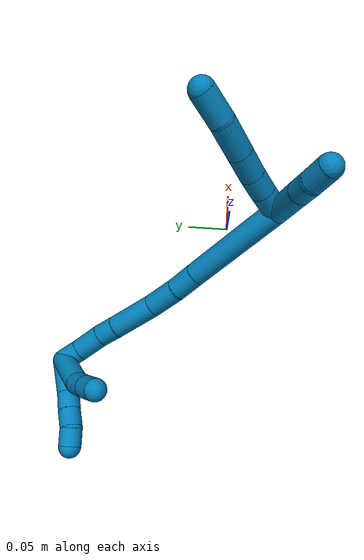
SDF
<sdf version="1.7">
 <world name="default">
  <model name="9">
   <static>0</static>
   <link name="9">
    <collision name="collision-cylinder-e_1_2_8">
     <pose>0.006198 0.00223 0.013406 -0.164849 0.427857 -0.035891</pose>
     <geometry><cylinder><radius>0.0125</radius><length>0.029873</length></cylinder></geometry>
     <surface>
      <friction><ode><mu>1.16</mu><mu2>1.16</mu2><slip1>0</slip1><slip2>0</slip2></ode></friction>
      <contact><ode><kp>1e+06</kp><kd>1</kd><max_vel>0</max_vel><min_depth>0.001</min_depth></ode></contact>
     </surface>
    </collision>
    <visual name="visual-cylinder-e_1_2_8">
     <pose>0.006198 0.00223 0.013406 -0.164849 0.427857 -0.035891</pose>
     <geometry><cylinder><radius>0.0125</radius><length>0.029873</length></cylinder></geometry>
     <material><ambient>0 0.490196 0.709804 1</ambient></material>
    </visual>
    <collision name="collision-cylinder-e_2_8_9">
     <pose>0.017258 0.00594 0.036866 -0.146128 0.446323 -0.033219</pose>
     <geometry><cylinder><radius>0.0125</radius><length>0.022533</length></cylinder></geometry>
     <surface>
      <friction><ode><mu>1.16</mu><mu2>1.16</mu2><slip1>0</slip1><slip2>0</slip2></ode></friction>
      <contact><ode><kp>1e+06</kp><kd>1</kd><max_vel>0</max_vel><min_depth>0.001</min_depth></ode></contact>
     </surface>
    </collision>
    <visual name="visual-cylinder-e_2_8_9">
     <pose>0.017258 0.00594 0.036866 -0.146128 0.446323 -0.033219</pose>
     <geometry><cylinder><radius>0.0125</radius><length>0.022533</length></cylinder></geometry>
     <material><ambient>0 0.490196 0.709804 1</ambient></material>
    </visual>
    <collision name="collision-cylinder-e_3_9_10">
     <pose>0.028019 0.008603 0.059261 -0.095579 0.444062 -0.021593</pose>
     <geometry><cylinder><radius>0.0125</radius><length>0.027457</length></cylinder></geometry>
     <surface>
      <friction><ode><mu>1.16</mu><mu2>1.16</mu2><slip1>0</slip1><slip2>0</slip2></ode></friction>
      <contact><ode><kp>1e+06</kp><kd>1</kd><max_vel>0</max_vel><min_depth>0.001</min_depth></ode></contact>
     </surface>
    </collision>
    <visual name="visual-cylinder-e_3_9_10">
     <pose>0.028019 0.008603 0.059261 -0.095579 0.444062 -0.021593</pose>
     <geometry><cylinder><radius>0.0125</radius><length>0.027457</length></cylinder></geometry>
     <material><ambient>0 0.490196 0.709804 1</ambient></material>
    </visual>
    <collision name="collision-cylinder-e_4_10_11">
     <pose>0.041978 0.011498 0.088134 -0.103203 0.451579 -0.023726</pose>
     <geometry><cylinder><radius>0.0125</radius><length>0.036946</length></cylinder></geometry>
     <surface>
      <friction><ode><mu>1.16</mu><mu2>1.16</mu2><slip1>0</slip1><slip2>0</slip2></ode></friction>
      <contact><ode><kp>1e+06</kp><kd>1</kd><max_vel>0</max_vel><min_depth>0.001</min_depth></ode></contact>
     </surface>
    </collision>
    <visual name="visual-cylinder-e_4_10_11">
     <pose>0.041978 0.011498 0.088134 -0.103203 0.451579 -0.023726</pose>
     <geometry><cylinder><radius>0.0125</radius><length>0.036946</length></cylinder></geometry>
     <material><ambient>0 0.490196 0.709804 1</ambient></material>
    </visual>
    <collision name="collision-cylinder-e_5_11_6">
     <pose>0.059617 0.016345 0.117853 -0.233343 0.615181 -0.074431</pose>
     <geometry><cylinder><radius>0.0125</radius><length>0.033192</length></cylinder></geometry>
     <surface>
      <friction><ode><mu>1.16</mu><mu2>1.16</mu2><slip1>0</slip1><slip2>0</slip2></ode></friction>
      <contact><ode><kp>1e+06</kp><kd>1</kd><max_vel>0</max_vel><min_depth>0.001</min_depth></ode></contact>
     </surface>
    </collision>
    <visual name="visual-cylinder-e_5_11_6">
     <pose>0.059617 0.016345 0.117853 -0.233343 0.615181 -0.074431</pose>
     <geometry><cylinder><radius>0.0125</radius><length>0.033192</length></cylinder></geometry>
     <material><ambient>0 0.490196 0.709804 1</ambient></material>
    </visual>
    <collision name="collision-cylinder-e_1_2_12">
     <pose>-0.003708 -0.015522 0.021424 0.626973 -0.139264 -0.045212</pose>
     <geometry><cylinder><radius>0.0125</radius><length>0.05343</length></cylinder></geometry>
     <surface>
      <friction><ode><mu>1.16</mu><mu2>1.16</mu2><slip1>0</slip1><slip2>0</slip2></ode></friction>
      <contact><ode><kp>1e+06</kp><kd>1</kd><max_vel>0</max_vel><min_depth>0.001</min_depth></ode></contact>
     </surface>
    </collision>
    <visual name="visual-cylinder-e_1_2_12">
     <pose>-0.003708 -0.015522 0.021424 0.626973 -0.139264 -0.045212</pose>
     <geometry><cylinder><radius>0.0125</radius><length>0.05343</length></cylinder></geometry>
     <material><ambient>0 0.490196 0.709804 1</ambient></material>
    </visual>
    <collision name="collision-cylinder-e_2_12_13">
     <pose>-0.008795 -0.037831 0.051388 0.67158 -0.12572 -0.043928</pose>
     <geometry><cylinder><radius>0.0125</radius><length>0.02199</length></cylinder></geometry>
     <surface>
      <friction><ode><mu>1.16</mu><mu2>1.16</mu2><slip1>0</slip1><slip2>0</slip2></ode></friction>
      <contact><ode><kp>1e+06</kp><kd>1</kd><max_vel>0</max_vel><min_depth>0.001</min_depth></ode></contact>
     </surface>
    </collision>
    <visual name="visual-cylinder-e_2_12_13">
     <pose>-0.008795 -0.037831 0.051388 0.67158 -0.12572 -0.043928</pose>
     <geometry><cylinder><radius>0.0125</radius><length>0.02199</length></cylinder></geometry>
     <material><ambient>0 0.490196 0.709804 1</ambient></material>
    </visual>
    <collision name="collision-cylinder-e_3_13_5">
     <pose>-0.009493 -0.054083 0.067737 0.880915 0.055479 0.026155</pose>
     <geometry><cylinder><radius>0.0125</radius><length>0.024581</length></cylinder></geometry>
     <surface>
      <friction><ode><mu>1.16</mu><mu2>1.16</mu2><slip1>0</slip1><slip2>0</slip2></ode></friction>
      <contact><ode><kp>1e+06</kp><kd>1</kd><max_vel>0</max_vel><min_depth>0.001</min_depth></ode></contact>
     </surface>
    </collision>
    <visual name="visual-cylinder-e_3_13_5">
     <pose>-0.009493 -0.054083 0.067737 0.880915 0.055479 0.026155</pose>
     <geometry><cylinder><radius>0.0125</radius><length>0.024581</length></cylinder></geometry>
     <material><ambient>0 0.490196 0.709804 1</ambient></material>
    </visual>
    <collision name="collision-cylinder-e_1_2_14">
     <pose>-0.014041 0.051284 -0.015125 -1.85759 -0.256807 0.342008</pose>
     <geometry><cylinder><radius>0.0125</radius><length>0.110562</length></cylinder></geometry>
     <surface>
      <friction><ode><mu>1.16</mu><mu2>1.16</mu2><slip1>0</slip1><slip2>0</slip2></ode></friction>
      <contact><ode><kp>1e+06</kp><kd>1</kd><max_vel>0</max_vel><min_depth>0.001</min_depth></ode></contact>
     </surface>
    </collision>
    <visual name="visual-cylinder-e_1_2_14">
     <pose>-0.014041 0.051284 -0.015125 -1.85759 -0.256807 0.342008</pose>
     <geometry><cylinder><radius>0.0125</radius><length>0.110562</length></cylinder></geometry>
     <material><ambient>0 0.490196 0.709804 1</ambient></material>
    </visual>
    <collision name="collision-cylinder-e_2_14_15">
     <pose>-0.032001 0.115456 -0.033706 -1.83283 -0.285699 0.370673</pose>
     <geometry><cylinder><radius>0.0125</radius><length>0.027813</length></cylinder></geometry>
     <surface>
      <friction><ode><mu>1.16</mu><mu2>1.16</mu2><slip1>0</slip1><slip2>0</slip2></ode></friction>
      <contact><ode><kp>1e+06</kp><kd>1</kd><max_vel>0</max_vel><min_depth>0.001</min_depth></ode></contact>
     </surface>
    </collision>
    <visual name="visual-cylinder-e_2_14_15">
     <pose>-0.032001 0.115456 -0.033706 -1.83283 -0.285699 0.370673</pose>
     <geometry><cylinder><radius>0.0125</radius><length>0.027813</length></cylinder></geometry>
     <material><ambient>0 0.490196 0.709804 1</ambient></material>
    </visual>
    <collision name="collision-cylinder-e_3_15_16">
     <pose>-0.03973 0.144871 -0.041132 -1.80647 -0.220465 0.278988</pose>
     <geometry><cylinder><radius>0.0125</radius><length>0.034838</length></cylinder></geometry>
     <surface>
      <friction><ode><mu>1.16</mu><mu2>1.16</mu2><slip1>0</slip1><slip2>0</slip2></ode></friction>
      <contact><ode><kp>1e+06</kp><kd>1</kd><max_vel>0</max_vel><min_depth>0.001</min_depth></ode></contact>
     </surface>
    </collision>
    <visual name="visual-cylinder-e_3_15_16">
     <pose>-0.03973 0.144871 -0.041132 -1.80647 -0.220465 0.278988</pose>
     <geometry><cylinder><radius>0.0125</radius><length>0.034838</length></cylinder></geometry>
     <material><ambient>0 0.490196 0.709804 1</ambient></material>
    </visual>
    <collision name="collision-cylinder-e_4_16_17">
     <pose>-0.049101 0.185685 -0.047559 -1.67169 -0.224019 0.247612</pose>
     <geometry><cylinder><radius>0.0125</radius><length>0.050074</length></cylinder></geometry>
     <surface>
      <friction><ode><mu>1.16</mu><mu2>1.16</mu2><slip1>0</slip1><slip2>0</slip2></ode></friction>
      <contact><ode><kp>1e+06</kp><kd>1</kd><max_vel>0</max_vel><min_depth>0.001</min_depth></ode></contact>
     </surface>
    </collision>
    <visual name="visual-cylinder-e_4_16_17">
     <pose>-0.049101 0.185685 -0.047559 -1.67169 -0.224019 0.247612</pose>
     <geometry><cylinder><radius>0.0125</radius><length>0.050074</length></cylinder></geometry>
     <material><ambient>0 0.490196 0.709804 1</ambient></material>
    </visual>
    <collision name="collision-cylinder-e_5_17_18">
     <pose>-0.05668 0.220675 -0.051473 -1.70596 -0.184592 0.211207</pose>
     <geometry><cylinder><radius>0.0125</radius><length>0.021975</length></cylinder></geometry>
     <surface>
      <friction><ode><mu>1.16</mu><mu2>1.16</mu2><slip1>0</slip1><slip2>0</slip2></ode></friction>
      <contact><ode><kp>1e+06</kp><kd>1</kd><max_vel>0</max_vel><min_depth>0.001</min_depth></ode></contact>
     </surface>
    </collision>
    <visual name="visual-cylinder-e_5_17_18">
     <pose>-0.05668 0.220675 -0.051473 -1.70596 -0.184592 0.211207</pose>
     <geometry><cylinder><radius>0.0125</radius><length>0.021975</length></cylinder></geometry>
     <material><ambient>0 0.490196 0.709804 1</ambient></material>
    </visual>
    <collision name="collision-cylinder-e_6_18_19">
     <pose>-0.063322 0.246375 -0.054483 -1.67409 -0.297638 0.329532</pose>
     <geometry><cylinder><radius>0.0125</radius><length>0.031544</length></cylinder></geometry>
     <surface>
      <friction><ode><mu>1.16</mu><mu2>1.16</mu2><slip1>0</slip1><slip2>0</slip2></ode></friction>
      <contact><ode><kp>1e+06</kp><kd>1</kd><max_vel>0</max_vel><min_depth>0.001</min_depth></ode></contact>
     </surface>
    </collision>
    <visual name="visual-cylinder-e_6_18_19">
     <pose>-0.063322 0.246375 -0.054483 -1.67409 -0.297638 0.329532</pose>
     <geometry><cylinder><radius>0.0125</radius><length>0.031544</length></cylinder></geometry>
     <material><ambient>0 0.490196 0.709804 1</ambient></material>
    </visual>
    <collision name="collision-cylinder-e_7_19_1">
     <pose>-0.071526 0.272404 -0.05591 -1.55915 -0.313703 0.310128</pose>
     <geometry><cylinder><radius>0.0125</radius><length>0.023195</length></cylinder></geometry>
     <surface>
      <friction><ode><mu>1.16</mu><mu2>1.16</mu2><slip1>0</slip1><slip2>0</slip2></ode></friction>
      <contact><ode><kp>1e+06</kp><kd>1</kd><max_vel>0</max_vel><min_depth>0.001</min_depth></ode></contact>
     </surface>
    </collision>
    <visual name="visual-cylinder-e_7_19_1">
     <pose>-0.071526 0.272404 -0.05591 -1.55915 -0.313703 0.310128</pose>
     <geometry><cylinder><radius>0.0125</radius><length>0.023195</length></cylinder></geometry>
     <material><ambient>0 0.490196 0.709804 1</ambient></material>
    </visual>
    <collision name="collision-cylinder-e_1_1_20">
     <pose>-0.094456 0.282463 -0.055373 1.17336 -1.51642 -1.12374</pose>
     <geometry><cylinder><radius>0.0125</radius><length>0.03876</length></cylinder></geometry>
     <surface>
      <friction><ode><mu>1.16</mu><mu2>1.16</mu2><slip1>0</slip1><slip2>0</slip2></ode></friction>
      <contact><ode><kp>1e+06</kp><kd>1</kd><max_vel>0</max_vel><min_depth>0.001</min_depth></ode></contact>
     </surface>
    </collision>
    <visual name="visual-cylinder-e_1_1_20">
     <pose>-0.094456 0.282463 -0.055373 1.17336 -1.51642 -1.12374</pose>
     <geometry><cylinder><radius>0.0125</radius><length>0.03876</length></cylinder></geometry>
     <material><ambient>0 0.490196 0.709804 1</ambient></material>
    </visual>
    <collision name="collision-cylinder-e_2_20_21">
     <pose>-0.123975 0.281182 -0.053531 0.212906 -1.42746 -0.184559</pose>
     <geometry><cylinder><radius>0.0125</radius><length>0.020546</length></cylinder></geometry>
     <surface>
      <friction><ode><mu>1.16</mu><mu2>1.16</mu2><slip1>0</slip1><slip2>0</slip2></ode></friction>
      <contact><ode><kp>1e+06</kp><kd>1</kd><max_vel>0</max_vel><min_depth>0.001</min_depth></ode></contact>
     </surface>
    </collision>
    <visual name="visual-cylinder-e_2_20_21">
     <pose>-0.123975 0.281182 -0.053531 0.212906 -1.42746 -0.184559</pose>
     <geometry><cylinder><radius>0.0125</radius><length>0.020546</length></cylinder></geometry>
     <material><ambient>0 0.490196 0.709804 1</ambient></material>
    </visual>
    <collision name="collision-cylinder-e_3_21_22">
     <pose>-0.144254 0.280067 -0.05074 0.535208 -1.416 -0.461082</pose>
     <geometry><cylinder><radius>0.0125</radius><length>0.020468</length></cylinder></geometry>
     <surface>
      <friction><ode><mu>1.16</mu><mu2>1.16</mu2><slip1>0</slip1><slip2>0</slip2></ode></friction>
      <contact><ode><kp>1e+06</kp><kd>1</kd><max_vel>0</max_vel><min_depth>0.001</min_depth></ode></contact>
     </surface>
    </collision>
    <visual name="visual-cylinder-e_3_21_22">
     <pose>-0.144254 0.280067 -0.05074 0.535208 -1.416 -0.461082</pose>
     <geometry><cylinder><radius>0.0125</radius><length>0.020468</length></cylinder></geometry>
     <material><ambient>0 0.490196 0.709804 1</ambient></material>
    </visual>
    <collision name="collision-cylinder-e_4_22_4">
     <pose>-0.164252 0.281388 -0.049519 -1.63462 -1.35856 1.42138</pose>
     <geometry><cylinder><radius>0.0125</radius><length>0.020226</length></cylinder></geometry>
     <surface>
      <friction><ode><mu>1.16</mu><mu2>1.16</mu2><slip1>0</slip1><slip2>0</slip2></ode></friction>
      <contact><ode><kp>1e+06</kp><kd>1</kd><max_vel>0</max_vel><min_depth>0.001</min_depth></ode></contact>
     </surface>
    </collision>
    <visual name="visual-cylinder-e_4_22_4">
     <pose>-0.164252 0.281388 -0.049519 -1.63462 -1.35856 1.42138</pose>
     <geometry><cylinder><radius>0.0125</radius><length>0.020226</length></cylinder></geometry>
     <material><ambient>0 0.490196 0.709804 1</ambient></material>
    </visual>
    <collision name="collision-cylinder-e_1_1_23">
     <pose>-0.093602 0.26899 -0.042181 0.815498 -0.750435 -0.337049</pose>
     <geometry><cylinder><radius>0.0125</radius><length>0.05425</length></cylinder></geometry>
     <surface>
      <friction><ode><mu>1.16</mu><mu2>1.16</mu2><slip1>0</slip1><slip2>0</slip2></ode></friction>
      <contact><ode><kp>1e+06</kp><kd>1</kd><max_vel>0</max_vel><min_depth>0.001</min_depth></ode></contact>
     </surface>
    </collision>
    <visual name="visual-cylinder-e_1_1_23">
     <pose>-0.093602 0.26899 -0.042181 0.815498 -0.750435 -0.337049</pose>
     <geometry><cylinder><radius>0.0125</radius><length>0.05425</length></cylinder></geometry>
     <material><ambient>0 0.490196 0.709804 1</ambient></material>
    </visual>
    <collision name="collision-cylinder-e_2_23_24">
     <pose>-0.116757 0.246155 -0.022044 0.908912 -0.41259 -0.203777</pose>
     <geometry><cylinder><radius>0.0125</radius><length>0.023224</length></cylinder></geometry>
     <surface>
      <friction><ode><mu>1.16</mu><mu2>1.16</mu2><slip1>0</slip1><slip2>0</slip2></ode></friction>
      <contact><ode><kp>1e+06</kp><kd>1</kd><max_vel>0</max_vel><min_depth>0.001</min_depth></ode></contact>
     </surface>
    </collision>
    <visual name="visual-cylinder-e_2_23_24">
     <pose>-0.116757 0.246155 -0.022044 0.908912 -0.41259 -0.203777</pose>
     <geometry><cylinder><radius>0.0125</radius><length>0.023224</length></cylinder></geometry>
     <material><ambient>0 0.490196 0.709804 1</ambient></material>
    </visual>
    <collision name="collision-cylinder-e_3_24_3">
     <pose>-0.125687 0.229328 -0.009388 0.943359 -0.389257 -0.200424</pose>
     <geometry><cylinder><radius>0.0125</radius><length>0.022526</length></cylinder></geometry>
     <surface>
      <friction><ode><mu>1.16</mu><mu2>1.16</mu2><slip1>0</slip1><slip2>0</slip2></ode></friction>
      <contact><ode><kp>1e+06</kp><kd>1</kd><max_vel>0</max_vel><min_depth>0.001</min_depth></ode></contact>
     </surface>
    </collision>
    <visual name="visual-cylinder-e_3_24_3">
     <pose>-0.125687 0.229328 -0.009388 0.943359 -0.389257 -0.200424</pose>
     <geometry><cylinder><radius>0.0125</radius><length>0.022526</length></cylinder></geometry>
     <material><ambient>0 0.490196 0.709804 1</ambient></material>
    </visual>
    <collision name="collision-sphere-3">
     <pose>-0.129961 0.220892 -0.003271 0 -0 0</pose>
     <geometry><sphere><radius>0.0125</radius></sphere></geometry>
     <surface>
      <friction><ode><mu>1.16</mu><mu2>1.16</mu2><slip1>0</slip1><slip2>0</slip2></ode></friction>
      <contact><ode><kp>1e+06</kp><kd>1</kd><max_vel>0</max_vel><min_depth>0.001</min_depth></ode></contact>
     </surface>
    </collision>
    <visual name="visual-sphere-3">
     <pose>-0.129961 0.220892 -0.003271 0 -0 0</pose>
     <geometry><sphere><radius>0.0125</radius></sphere></geometry>
     <material><ambient>0 0.490196 0.709804 1</ambient></material>
    </visual>
    <collision name="collision-sphere-24">
     <pose>-0.121413 0.237764 -0.015506 0 -0 0</pose>
     <geometry><sphere><radius>0.0125</radius></sphere></geometry>
     <surface>
      <friction><ode><mu>1.16</mu><mu2>1.16</mu2><slip1>0</slip1><slip2>0</slip2></ode></friction>
      <contact><ode><kp>1e+06</kp><kd>1</kd><max_vel>0</max_vel><min_depth>0.001</min_depth></ode></contact>
     </surface>
    </collision>
    <visual name="visual-sphere-24">
     <pose>-0.121413 0.237764 -0.015506 0 -0 0</pose>
     <geometry><sphere><radius>0.0125</radius></sphere></geometry>
     <material><ambient>0 0.490196 0.709804 1</ambient></material>
    </visual>
    <collision name="collision-sphere-23">
     <pose>-0.1121 0.254546 -0.028582 0 -0 0</pose>
     <geometry><sphere><radius>0.0125</radius></sphere></geometry>
     <surface>
      <friction><ode><mu>1.16</mu><mu2>1.16</mu2><slip1>0</slip1><slip2>0</slip2></ode></friction>
      <contact><ode><kp>1e+06</kp><kd>1</kd><max_vel>0</max_vel><min_depth>0.001</min_depth></ode></contact>
     </surface>
    </collision>
    <visual name="visual-sphere-23">
     <pose>-0.1121 0.254546 -0.028582 0 -0 0</pose>
     <geometry><sphere><radius>0.0125</radius></sphere></geometry>
     <material><ambient>0 0.490196 0.709804 1</ambient></material>
    </visual>
    <collision name="collision-sphere-4">
     <pose>-0.174138 0.283514 -0.049654 0 -0 0</pose>
     <geometry><sphere><radius>0.0125</radius></sphere></geometry>
     <surface>
      <friction><ode><mu>1.16</mu><mu2>1.16</mu2><slip1>0</slip1><slip2>0</slip2></ode></friction>
      <contact><ode><kp>1e+06</kp><kd>1</kd><max_vel>0</max_vel><min_depth>0.001</min_depth></ode></contact>
     </surface>
    </collision>
    <visual name="visual-sphere-4">
     <pose>-0.174138 0.283514 -0.049654 0 -0 0</pose>
     <geometry><sphere><radius>0.0125</radius></sphere></geometry>
     <material><ambient>0 0.490196 0.709804 1</ambient></material>
    </visual>
    <collision name="collision-sphere-22">
     <pose>-0.154365 0.279262 -0.049383 0 -0 0</pose>
     <geometry><sphere><radius>0.0125</radius></sphere></geometry>
     <surface>
      <friction><ode><mu>1.16</mu><mu2>1.16</mu2><slip1>0</slip1><slip2>0</slip2></ode></friction>
      <contact><ode><kp>1e+06</kp><kd>1</kd><max_vel>0</max_vel><min_depth>0.001</min_depth></ode></contact>
     </surface>
    </collision>
    <visual name="visual-sphere-22">
     <pose>-0.154365 0.279262 -0.049383 0 -0 0</pose>
     <geometry><sphere><radius>0.0125</radius></sphere></geometry>
     <material><ambient>0 0.490196 0.709804 1</ambient></material>
    </visual>
    <collision name="collision-sphere-21">
     <pose>-0.134142 0.280872 -0.052097 0 -0 0</pose>
     <geometry><sphere><radius>0.0125</radius></sphere></geometry>
     <surface>
      <friction><ode><mu>1.16</mu><mu2>1.16</mu2><slip1>0</slip1><slip2>0</slip2></ode></friction>
      <contact><ode><kp>1e+06</kp><kd>1</kd><max_vel>0</max_vel><min_depth>0.001</min_depth></ode></contact>
     </surface>
    </collision>
    <visual name="visual-sphere-21">
     <pose>-0.134142 0.280872 -0.052097 0 -0 0</pose>
     <geometry><sphere><radius>0.0125</radius></sphere></geometry>
     <material><ambient>0 0.490196 0.709804 1</ambient></material>
    </visual>
    <collision name="collision-sphere-20">
     <pose>-0.113807 0.281492 -0.054966 0 -0 0</pose>
     <geometry><sphere><radius>0.0125</radius></sphere></geometry>
     <surface>
      <friction><ode><mu>1.16</mu><mu2>1.16</mu2><slip1>0</slip1><slip2>0</slip2></ode></friction>
      <contact><ode><kp>1e+06</kp><kd>1</kd><max_vel>0</max_vel><min_depth>0.001</min_depth></ode></contact>
     </surface>
    </collision>
    <visual name="visual-sphere-20">
     <pose>-0.113807 0.281492 -0.054966 0 -0 0</pose>
     <geometry><sphere><radius>0.0125</radius></sphere></geometry>
     <material><ambient>0 0.490196 0.709804 1</ambient></material>
    </visual>
    <collision name="collision-sphere-6">
     <pose>0.069195 0.019479 0.131039 0 -0 0</pose>
     <geometry><sphere><radius>0.0125</radius></sphere></geometry>
     <surface>
      <friction><ode><mu>1.16</mu><mu2>1.16</mu2><slip1>0</slip1><slip2>0</slip2></ode></friction>
      <contact><ode><kp>1e+06</kp><kd>1</kd><max_vel>0</max_vel><min_depth>0.001</min_depth></ode></contact>
     </surface>
    </collision>
    <visual name="visual-sphere-6">
     <pose>0.069195 0.019479 0.131039 0 -0 0</pose>
     <geometry><sphere><radius>0.0125</radius></sphere></geometry>
     <material><ambient>0 0.490196 0.709804 1</ambient></material>
    </visual>
    <collision name="collision-sphere-11">
     <pose>0.05004 0.013211 0.104667 0 -0 0</pose>
     <geometry><sphere><radius>0.0125</radius></sphere></geometry>
     <surface>
      <friction><ode><mu>1.16</mu><mu2>1.16</mu2><slip1>0</slip1><slip2>0</slip2></ode></friction>
      <contact><ode><kp>1e+06</kp><kd>1</kd><max_vel>0</max_vel><min_depth>0.001</min_depth></ode></contact>
     </surface>
    </collision>
    <visual name="visual-sphere-11">
     <pose>0.05004 0.013211 0.104667 0 -0 0</pose>
     <geometry><sphere><radius>0.0125</radius></sphere></geometry>
     <material><ambient>0 0.490196 0.709804 1</ambient></material>
    </visual>
    <collision name="collision-sphere-10">
     <pose>0.033917 0.009786 0.071601 0 -0 0</pose>
     <geometry><sphere><radius>0.0125</radius></sphere></geometry>
     <surface>
      <friction><ode><mu>1.16</mu><mu2>1.16</mu2><slip1>0</slip1><slip2>0</slip2></ode></friction>
      <contact><ode><kp>1e+06</kp><kd>1</kd><max_vel>0</max_vel><min_depth>0.001</min_depth></ode></contact>
     </surface>
    </collision>
    <visual name="visual-sphere-10">
     <pose>0.033917 0.009786 0.071601 0 -0 0</pose>
     <geometry><sphere><radius>0.0125</radius></sphere></geometry>
     <material><ambient>0 0.490196 0.709804 1</ambient></material>
    </visual>
    <collision name="collision-sphere-9">
     <pose>0.022121 0.00742 0.046921 0 -0 0</pose>
     <geometry><sphere><radius>0.0125</radius></sphere></geometry>
     <surface>
      <friction><ode><mu>1.16</mu><mu2>1.16</mu2><slip1>0</slip1><slip2>0</slip2></ode></friction>
      <contact><ode><kp>1e+06</kp><kd>1</kd><max_vel>0</max_vel><min_depth>0.001</min_depth></ode></contact>
     </surface>
    </collision>
    <visual name="visual-sphere-9">
     <pose>0.022121 0.00742 0.046921 0 -0 0</pose>
     <geometry><sphere><radius>0.0125</radius></sphere></geometry>
     <material><ambient>0 0.490196 0.709804 1</ambient></material>
    </visual>
    <collision name="collision-sphere-2">
     <geometry><sphere><radius>0.0125</radius></sphere></geometry>
     <surface>
      <friction><ode><mu>1.16</mu><mu2>1.16</mu2><slip1>0</slip1><slip2>0</slip2></ode></friction>
      <contact><ode><kp>1e+06</kp><kd>1</kd><max_vel>0</max_vel><min_depth>0.001</min_depth></ode></contact>
     </surface>
    </collision>
    <visual name="visual-sphere-2">
     <geometry><sphere><radius>0.0125</radius></sphere></geometry>
     <material><ambient>0 0.490196 0.709804 1</ambient></material>
    </visual>
    <collision name="collision-sphere-19">
     <pose>-0.067947 0.261373 -0.056038 0 -0 0</pose>
     <geometry><sphere><radius>0.0125</radius></sphere></geometry>
     <surface>
      <friction><ode><mu>1.16</mu><mu2>1.16</mu2><slip1>0</slip1><slip2>0</slip2></ode></friction>
      <contact><ode><kp>1e+06</kp><kd>1</kd><max_vel>0</max_vel><min_depth>0.001</min_depth></ode></contact>
     </surface>
    </collision>
    <visual name="visual-sphere-19">
     <pose>-0.067947 0.261373 -0.056038 0 -0 0</pose>
     <geometry><sphere><radius>0.0125</radius></sphere></geometry>
     <material><ambient>0 0.490196 0.709804 1</ambient></material>
    </visual>
    <collision name="collision-sphere-8">
     <pose>0.012395 0.00446 0.026812 0 -0 0</pose>
     <geometry><sphere><radius>0.0125</radius></sphere></geometry>
     <surface>
      <friction><ode><mu>1.16</mu><mu2>1.16</mu2><slip1>0</slip1><slip2>0</slip2></ode></friction>
      <contact><ode><kp>1e+06</kp><kd>1</kd><max_vel>0</max_vel><min_depth>0.001</min_depth></ode></contact>
     </surface>
    </collision>
    <visual name="visual-sphere-8">
     <pose>0.012395 0.00446 0.026812 0 -0 0</pose>
     <geometry><sphere><radius>0.0125</radius></sphere></geometry>
     <material><ambient>0 0.490196 0.709804 1</ambient></material>
    </visual>
    <collision name="collision-sphere-12">
     <pose>-0.007417 -0.031043 0.042849 0 -0 0</pose>
     <geometry><sphere><radius>0.0125</radius></sphere></geometry>
     <surface>
      <friction><ode><mu>1.16</mu><mu2>1.16</mu2><slip1>0</slip1><slip2>0</slip2></ode></friction>
      <contact><ode><kp>1e+06</kp><kd>1</kd><max_vel>0</max_vel><min_depth>0.001</min_depth></ode></contact>
     </surface>
    </collision>
    <visual name="visual-sphere-12">
     <pose>-0.007417 -0.031043 0.042849 0 -0 0</pose>
     <geometry><sphere><radius>0.0125</radius></sphere></geometry>
     <material><ambient>0 0.490196 0.709804 1</ambient></material>
    </visual>
    <collision name="collision-sphere-13">
     <pose>-0.010174 -0.044618 0.059927 0 -0 0</pose>
     <geometry><sphere><radius>0.0125</radius></sphere></geometry>
     <surface>
      <friction><ode><mu>1.16</mu><mu2>1.16</mu2><slip1>0</slip1><slip2>0</slip2></ode></friction>
      <contact><ode><kp>1e+06</kp><kd>1</kd><max_vel>0</max_vel><min_depth>0.001</min_depth></ode></contact>
     </surface>
    </collision>
    <visual name="visual-sphere-13">
     <pose>-0.010174 -0.044618 0.059927 0 -0 0</pose>
     <geometry><sphere><radius>0.0125</radius></sphere></geometry>
     <material><ambient>0 0.490196 0.709804 1</ambient></material>
    </visual>
    <collision name="collision-sphere-5">
     <pose>-0.008811 -0.063548 0.075548 0 -0 0</pose>
     <geometry><sphere><radius>0.0125</radius></sphere></geometry>
     <surface>
      <friction><ode><mu>1.16</mu><mu2>1.16</mu2><slip1>0</slip1><slip2>0</slip2></ode></friction>
      <contact><ode><kp>1e+06</kp><kd>1</kd><max_vel>0</max_vel><min_depth>0.001</min_depth></ode></contact>
     </surface>
    </collision>
    <visual name="visual-sphere-5">
     <pose>-0.008811 -0.063548 0.075548 0 -0 0</pose>
     <geometry><sphere><radius>0.0125</radius></sphere></geometry>
     <material><ambient>0 0.490196 0.709804 1</ambient></material>
    </visual>
    <collision name="collision-sphere-14">
     <pose>-0.028082 0.102568 -0.03025 0 -0 0</pose>
     <geometry><sphere><radius>0.0125</radius></sphere></geometry>
     <surface>
      <friction><ode><mu>1.16</mu><mu2>1.16</mu2><slip1>0</slip1><slip2>0</slip2></ode></friction>
      <contact><ode><kp>1e+06</kp><kd>1</kd><max_vel>0</max_vel><min_depth>0.001</min_depth></ode></contact>
     </surface>
    </collision>
    <visual name="visual-sphere-14">
     <pose>-0.028082 0.102568 -0.03025 0 -0 0</pose>
     <geometry><sphere><radius>0.0125</radius></sphere></geometry>
     <material><ambient>0 0.490196 0.709804 1</ambient></material>
    </visual>
    <collision name="collision-sphere-15">
     <pose>-0.03592 0.128343 -0.037163 0 -0 0</pose>
     <geometry><sphere><radius>0.0125</radius></sphere></geometry>
     <surface>
      <friction><ode><mu>1.16</mu><mu2>1.16</mu2><slip1>0</slip1><slip2>0</slip2></ode></friction>
      <contact><ode><kp>1e+06</kp><kd>1</kd><max_vel>0</max_vel><min_depth>0.001</min_depth></ode></contact>
     </surface>
    </collision>
    <visual name="visual-sphere-15">
     <pose>-0.03592 0.128343 -0.037163 0 -0 0</pose>
     <geometry><sphere><radius>0.0125</radius></sphere></geometry>
     <material><ambient>0 0.490196 0.709804 1</ambient></material>
    </visual>
    <collision name="collision-sphere-16">
     <pose>-0.043539 0.161398 -0.0451 0 -0 0</pose>
     <geometry><sphere><radius>0.0125</radius></sphere></geometry>
     <surface>
      <friction><ode><mu>1.16</mu><mu2>1.16</mu2><slip1>0</slip1><slip2>0</slip2></ode></friction>
      <contact><ode><kp>1e+06</kp><kd>1</kd><max_vel>0</max_vel><min_depth>0.001</min_depth></ode></contact>
     </surface>
    </collision>
    <visual name="visual-sphere-16">
     <pose>-0.043539 0.161398 -0.0451 0 -0 0</pose>
     <geometry><sphere><radius>0.0125</radius></sphere></geometry>
     <material><ambient>0 0.490196 0.709804 1</ambient></material>
    </visual>
    <collision name="collision-sphere-17">
     <pose>-0.054663 0.209972 -0.050018 0 -0 0</pose>
     <geometry><sphere><radius>0.0125</radius></sphere></geometry>
     <surface>
      <friction><ode><mu>1.16</mu><mu2>1.16</mu2><slip1>0</slip1><slip2>0</slip2></ode></friction>
      <contact><ode><kp>1e+06</kp><kd>1</kd><max_vel>0</max_vel><min_depth>0.001</min_depth></ode></contact>
     </surface>
    </collision>
    <visual name="visual-sphere-17">
     <pose>-0.054663 0.209972 -0.050018 0 -0 0</pose>
     <geometry><sphere><radius>0.0125</radius></sphere></geometry>
     <material><ambient>0 0.490196 0.709804 1</ambient></material>
    </visual>
    <collision name="collision-sphere-18">
     <pose>-0.058696 0.231377 -0.052929 0 -0 0</pose>
     <geometry><sphere><radius>0.0125</radius></sphere></geometry>
     <surface>
      <friction><ode><mu>1.16</mu><mu2>1.16</mu2><slip1>0</slip1><slip2>0</slip2></ode></friction>
      <contact><ode><kp>1e+06</kp><kd>1</kd><max_vel>0</max_vel><min_depth>0.001</min_depth></ode></contact>
     </surface>
    </collision>
    <visual name="visual-sphere-18">
     <pose>-0.058696 0.231377 -0.052929 0 -0 0</pose>
     <geometry><sphere><radius>0.0125</radius></sphere></geometry>
     <material><ambient>0 0.490196 0.709804 1</ambient></material>
    </visual>
    <collision name="collision-sphere-1">
     <pose>-0.075104 0.283434 -0.055781 0 -0 0</pose>
     <geometry><sphere><radius>0.0125</radius></sphere></geometry>
     <surface>
      <friction><ode><mu>1.16</mu><mu2>1.16</mu2><slip1>0</slip1><slip2>0</slip2></ode></friction>
      <contact><ode><kp>1e+06</kp><kd>1</kd><max_vel>0</max_vel><min_depth>0.001</min_depth></ode></contact>
     </surface>
    </collision>
    <visual name="visual-sphere-1">
     <pose>-0.075104 0.283434 -0.055781 0 -0 0</pose>
     <geometry><sphere><radius>0.0125</radius></sphere></geometry>
     <material><ambient>0 0.490196 0.709804 1</ambient></material>
    </visual>
    <inertial>
     <pose>-0.040057 0.125604 -0.006537 0 -0 0</pose>
     <mass>0.75</mass>
     <inertia>
      <ixx>0.000208</ixx>
      <ixy>0</ixy>
      <ixz>0</ixz>
      <iyy>8.8e-05</iyy>
      <iyz>0</iyz>
      <izz>-4.6e-05</izz>
     </inertia>
    </inertial>
   </link>
   <pose>-0.080053 -0.037197 0.198895 -0.390712 -0.03977 0.221875</pose>
  </model>
 </world>
</sdf>
